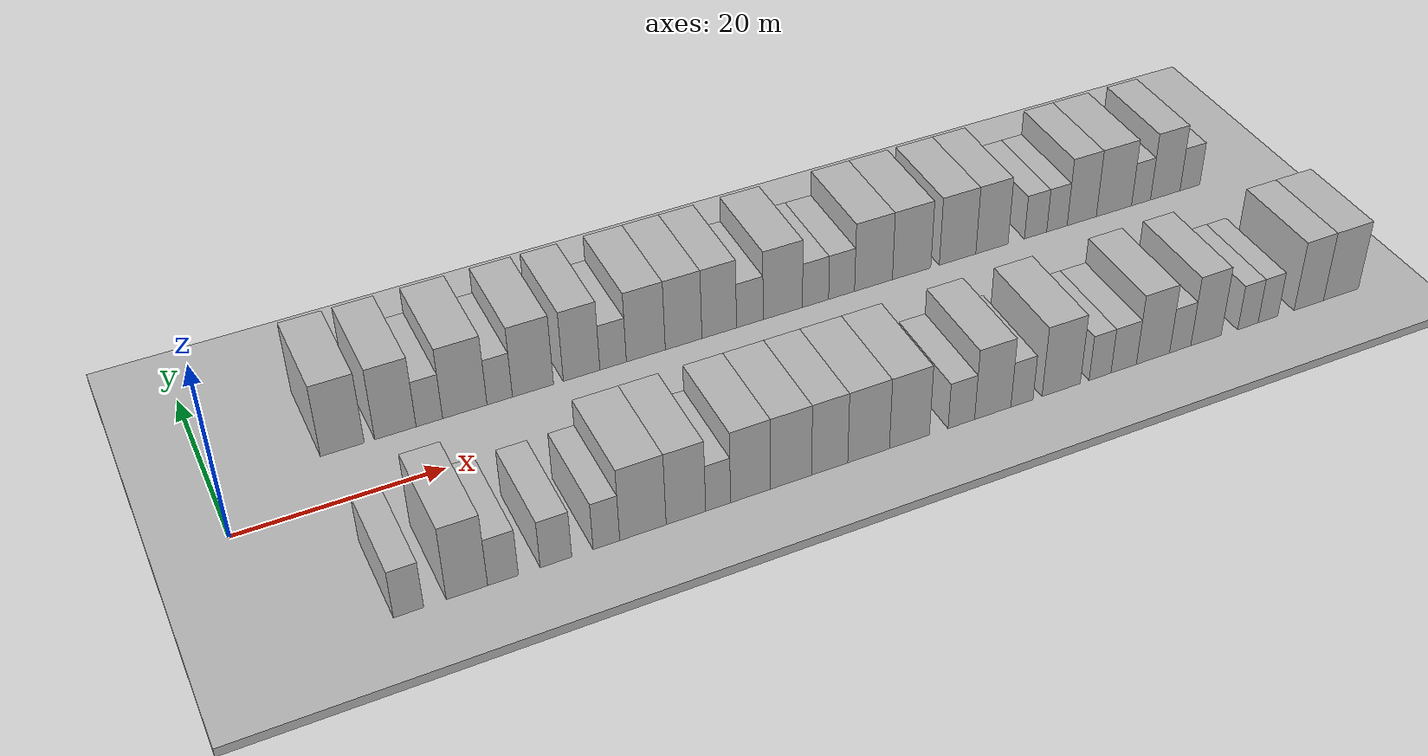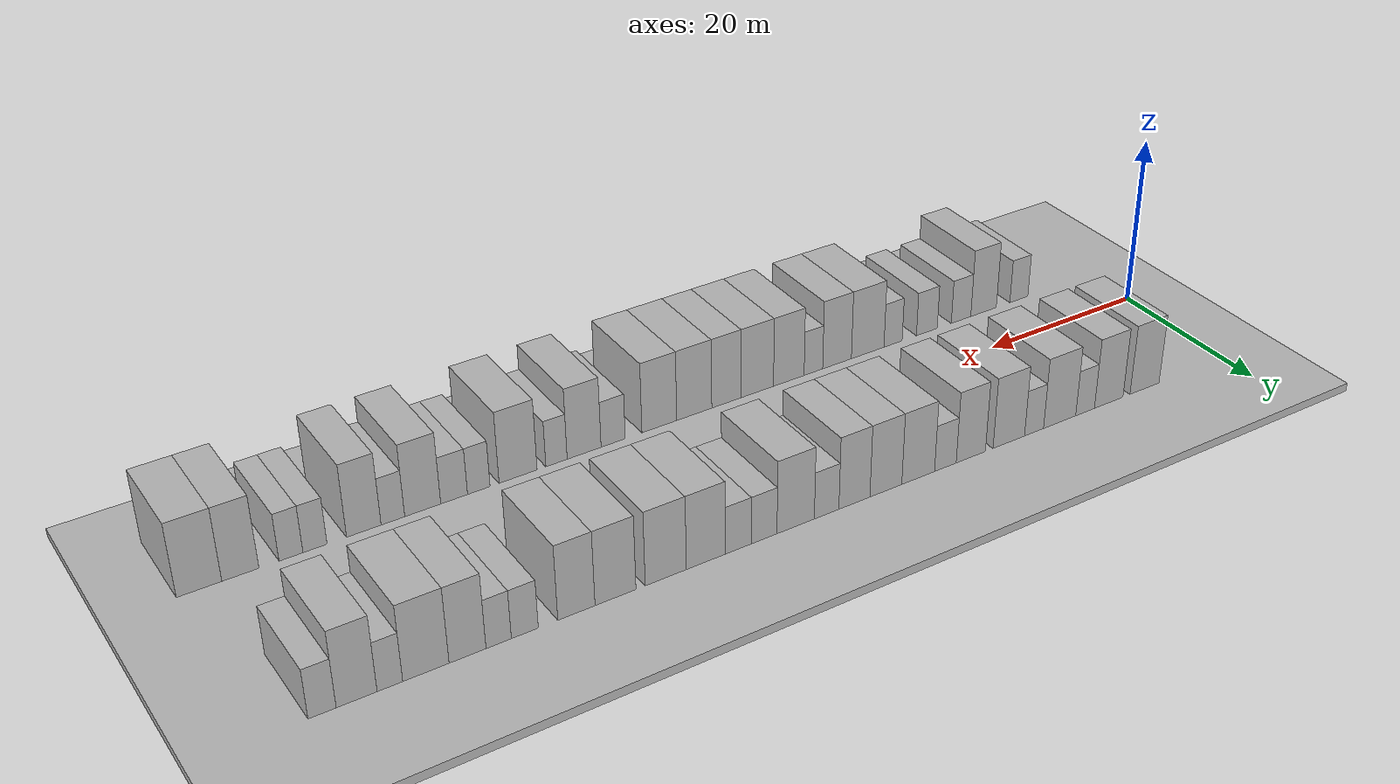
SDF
<sdf version="1.6">
 <world name="default">
  <include><name>ground_plane_1</name><uri>model://HANNAS_ground_plane</uri></include>
  <include>
   <name>ground_plane_2</name>
   <uri>model://HANNAS_ground_plane</uri>
   <pose>100 0 0  0 0 0</pose>
  </include>
  <model name="building_1">
   <static>1</static>
   <pose>12.0894 11.0000 0 0.000000 0.000000 1.570796</pose>
   <link name="link">
    <pose>0 0 4.50 0 0 0</pose>
    <collision name="collision"><geometry><box><size>10.0000 4.1788 9.0000</size></box></geometry></collision>
    <visual name="visual">
     <cast_shadows>0</cast_shadows>
     <geometry><box><size>10.0000 4.1788 9.0000</size></box></geometry>
     <material>
      <script>
       <uri>model://HANNAS_wall/materials/scripts</uri>
       <uri>model://HANNAS_wall/materials/textures</uri>
       <name>vrc/HANNAS_wall</name>
      </script>
     </material>
    </visual>
   </link>
  </model>
  <model name="building_2">
   <static>1</static>
   <pose>17.1828 11.0000 0 0.000000 0.000000 1.570796</pose>
   <link name="link">
    <pose>0 0 4.50 0 0 0</pose>
    <collision name="collision"><geometry><box><size>10.0000 4.0079 9.0000</size></box></geometry></collision>
    <visual name="visual">
     <cast_shadows>0</cast_shadows>
     <geometry><box><size>10.0000 4.0079 9.0000</size></box></geometry>
     <material>
      <script>
       <uri>model://HANNAS_wall/materials/scripts</uri>
       <uri>model://HANNAS_wall/materials/textures</uri>
       <name>vrc/HANNAS_wall</name>
      </script>
     </material>
    </visual>
   </link>
  </model>
  <model name="building_3">
   <static>1</static>
   <pose>20.4852 11.0000 0 0.000000 0.000000 1.570796</pose>
   <link name="link">
    <pose>0 0 3.00 0 0 0</pose>
    <collision name="collision"><geometry><box><size>10.0000 2.5969 6.0000</size></box></geometry></collision>
    <visual name="visual">
     <cast_shadows>0</cast_shadows>
     <geometry><box><size>10.0000 2.5969 6.0000</size></box></geometry>
     <material>
      <script>
       <uri>model://HANNAS_wall/materials/scripts</uri>
       <uri>model://HANNAS_wall/materials/textures</uri>
       <name>vrc/HANNAS_wall</name>
      </script>
     </material>
    </visual>
   </link>
  </model>
  <model name="building_4">
   <static>1</static>
   <pose>23.9830 11.0000 0 0.000000 0.000000 1.570796</pose>
   <link name="link">
    <pose>0 0 4.50 0 0 0</pose>
    <collision name="collision"><geometry><box><size>10.0000 4.3987 9.0000</size></box></geometry></collision>
    <visual name="visual">
     <cast_shadows>0</cast_shadows>
     <geometry><box><size>10.0000 4.3987 9.0000</size></box></geometry>
     <material>
      <script>
       <uri>model://HANNAS_wall/materials/scripts</uri>
       <uri>model://HANNAS_wall/materials/textures</uri>
       <name>vrc/HANNAS_wall</name>
      </script>
     </material>
    </visual>
   </link>
  </model>
  <model name="building_5">
   <static>1</static>
   <pose>27.4589 11.0000 0 0.000000 0.000000 1.570796</pose>
   <link name="link">
    <pose>0 0 3.00 0 0 0</pose>
    <collision name="collision"><geometry><box><size>10.0000 2.5531 6.0000</size></box></geometry></collision>
    <visual name="visual">
     <cast_shadows>0</cast_shadows>
     <geometry><box><size>10.0000 2.5531 6.0000</size></box></geometry>
     <material>
      <script>
       <uri>model://HANNAS_wall/materials/scripts</uri>
       <uri>model://HANNAS_wall/materials/textures</uri>
       <name>vrc/HANNAS_wall</name>
      </script>
     </material>
    </visual>
   </link>
  </model>
  <model name="building_6">
   <static>1</static>
   <pose>30.8205 11.0000 0 0.000000 0.000000 1.570796</pose>
   <link name="link">
    <pose>0 0 4.50 0 0 0</pose>
    <collision name="collision"><geometry><box><size>10.0000 4.1700 9.0000</size></box></geometry></collision>
    <visual name="visual">
     <cast_shadows>0</cast_shadows>
     <geometry><box><size>10.0000 4.1700 9.0000</size></box></geometry>
     <material>
      <script>
       <uri>model://HANNAS_wall/materials/scripts</uri>
       <uri>model://HANNAS_wall/materials/textures</uri>
       <name>vrc/HANNAS_wall</name>
      </script>
     </material>
    </visual>
   </link>
  </model>
  <model name="building_7">
   <static>1</static>
   <pose>35.7964 11.0000 0 0.000000 0.000000 1.570796</pose>
   <link name="link">
    <pose>0 0 4.50 0 0 0</pose>
    <collision name="collision"><geometry><box><size>10.0000 3.7817 9.0000</size></box></geometry></collision>
    <visual name="visual">
     <cast_shadows>0</cast_shadows>
     <geometry><box><size>10.0000 3.7817 9.0000</size></box></geometry>
     <material>
      <script>
       <uri>model://HANNAS_wall/materials/scripts</uri>
       <uri>model://HANNAS_wall/materials/textures</uri>
       <name>vrc/HANNAS_wall</name>
      </script>
     </material>
    </visual>
   </link>
  </model>
  <model name="building_8">
   <static>1</static>
   <pose>39.0722 11.0000 0 0.000000 0.000000 1.570796</pose>
   <link name="link">
    <pose>0 0 3.00 0 0 0</pose>
    <collision name="collision"><geometry><box><size>10.0000 2.7698 6.0000</size></box></geometry></collision>
    <visual name="visual">
     <cast_shadows>0</cast_shadows>
     <geometry><box><size>10.0000 2.7698 6.0000</size></box></geometry>
     <material>
      <script>
       <uri>model://HANNAS_wall/materials/scripts</uri>
       <uri>model://HANNAS_wall/materials/textures</uri>
       <name>vrc/HANNAS_wall</name>
      </script>
     </material>
    </visual>
   </link>
  </model>
  <model name="building_9">
   <static>1</static>
   <pose>42.5148 11.0000 0 0.000000 0.000000 1.570796</pose>
   <link name="link">
    <pose>0 0 4.50 0 0 0</pose>
    <collision name="collision"><geometry><box><size>10.0000 4.1155 9.0000</size></box></geometry></collision>
    <visual name="visual">
     <cast_shadows>0</cast_shadows>
     <geometry><box><size>10.0000 4.1155 9.0000</size></box></geometry>
     <material>
      <script>
       <uri>model://HANNAS_wall/materials/scripts</uri>
       <uri>model://HANNAS_wall/materials/textures</uri>
       <name>vrc/HANNAS_wall</name>
      </script>
     </material>
    </visual>
   </link>
  </model>
  <model name="building_10">
   <static>1</static>
   <pose>46.5378 11.0000 0 0.000000 0.000000 1.570796</pose>
   <link name="link">
    <pose>0 0 4.50 0 0 0</pose>
    <collision name="collision"><geometry><box><size>10.0000 3.9304 9.0000</size></box></geometry></collision>
    <visual name="visual">
     <cast_shadows>0</cast_shadows>
     <geometry><box><size>10.0000 3.9304 9.0000</size></box></geometry>
     <material>
      <script>
       <uri>model://HANNAS_wall/materials/scripts</uri>
       <uri>model://HANNAS_wall/materials/textures</uri>
       <name>vrc/HANNAS_wall</name>
      </script>
     </material>
    </visual>
   </link>
  </model>
  <model name="building_11">
   <static>1</static>
   <pose>50.3822 11.0000 0 0.000000 0.000000 1.570796</pose>
   <link name="link">
    <pose>0 0 4.50 0 0 0</pose>
    <collision name="collision"><geometry><box><size>10.0000 3.7583 9.0000</size></box></geometry></collision>
    <visual name="visual">
     <cast_shadows>0</cast_shadows>
     <geometry><box><size>10.0000 3.7583 9.0000</size></box></geometry>
     <material>
      <script>
       <uri>model://HANNAS_wall/materials/scripts</uri>
       <uri>model://HANNAS_wall/materials/textures</uri>
       <name>vrc/HANNAS_wall</name>
      </script>
     </material>
    </visual>
   </link>
  </model>
  <model name="building_12">
   <static>1</static>
   <pose>53.7239 11.0000 0 0.000000 0.000000 1.570796</pose>
   <link name="link">
    <pose>0 0 3.00 0 0 0</pose>
    <collision name="collision"><geometry><box><size>10.0000 2.9252 6.0000</size></box></geometry></collision>
    <visual name="visual">
     <cast_shadows>0</cast_shadows>
     <geometry><box><size>10.0000 2.9252 6.0000</size></box></geometry>
     <material>
      <script>
       <uri>model://HANNAS_wall/materials/scripts</uri>
       <uri>model://HANNAS_wall/materials/textures</uri>
       <name>vrc/HANNAS_wall</name>
      </script>
     </material>
    </visual>
   </link>
  </model>
  <model name="building_13">
   <static>1</static>
   <pose>57.3738 11.0000 0 0.000000 0.000000 1.570796</pose>
   <link name="link">
    <pose>0 0 4.50 0 0 0</pose>
    <collision name="collision"><geometry><box><size>10.0000 4.3746 9.0000</size></box></geometry></collision>
    <visual name="visual">
     <cast_shadows>0</cast_shadows>
     <geometry><box><size>10.0000 4.3746 9.0000</size></box></geometry>
     <material>
      <script>
       <uri>model://HANNAS_wall/materials/scripts</uri>
       <uri>model://HANNAS_wall/materials/textures</uri>
       <name>vrc/HANNAS_wall</name>
      </script>
     </material>
    </visual>
   </link>
  </model>
  <model name="building_14">
   <static>1</static>
   <pose>61.0347 11.0000 0 0.000000 0.000000 1.570796</pose>
   <link name="link">
    <pose>0 0 3.00 0 0 0</pose>
    <collision name="collision"><geometry><box><size>10.0000 2.9471 6.0000</size></box></geometry></collision>
    <visual name="visual">
     <cast_shadows>0</cast_shadows>
     <geometry><box><size>10.0000 2.9471 6.0000</size></box></geometry>
     <material>
      <script>
       <uri>model://HANNAS_wall/materials/scripts</uri>
       <uri>model://HANNAS_wall/materials/textures</uri>
       <name>vrc/HANNAS_wall</name>
      </script>
     </material>
    </visual>
   </link>
  </model>
  <model name="building_15">
   <static>1</static>
   <pose>63.9837 11.0000 0 0.000000 0.000000 1.570796</pose>
   <link name="link">
    <pose>0 0 3.00 0 0 0</pose>
    <collision name="collision"><geometry><box><size>10.0000 2.9508 6.0000</size></box></geometry></collision>
    <visual name="visual">
     <cast_shadows>0</cast_shadows>
     <geometry><box><size>10.0000 2.9508 6.0000</size></box></geometry>
     <material>
      <script>
       <uri>model://HANNAS_wall/materials/scripts</uri>
       <uri>model://HANNAS_wall/materials/textures</uri>
       <name>vrc/HANNAS_wall</name>
      </script>
     </material>
    </visual>
   </link>
  </model>
  <model name="building_16">
   <static>1</static>
   <pose>67.6366 11.0000 0 0.000000 0.000000 1.570796</pose>
   <link name="link">
    <pose>0 0 4.50 0 0 0</pose>
    <collision name="collision"><geometry><box><size>10.0000 4.3550 9.0000</size></box></geometry></collision>
    <visual name="visual">
     <cast_shadows>0</cast_shadows>
     <geometry><box><size>10.0000 4.3550 9.0000</size></box></geometry>
     <material>
      <script>
       <uri>model://HANNAS_wall/materials/scripts</uri>
       <uri>model://HANNAS_wall/materials/textures</uri>
       <name>vrc/HANNAS_wall</name>
      </script>
     </material>
    </visual>
   </link>
  </model>
  <model name="building_17">
   <static>1</static>
   <pose>72.0608 11.0000 0 0.000000 0.000000 1.570796</pose>
   <link name="link">
    <pose>0 0 4.50 0 0 0</pose>
    <collision name="collision"><geometry><box><size>10.0000 4.4936 9.0000</size></box></geometry></collision>
    <visual name="visual">
     <cast_shadows>0</cast_shadows>
     <geometry><box><size>10.0000 4.4936 9.0000</size></box></geometry>
     <material>
      <script>
       <uri>model://HANNAS_wall/materials/scripts</uri>
       <uri>model://HANNAS_wall/materials/textures</uri>
       <name>vrc/HANNAS_wall</name>
      </script>
     </material>
    </visual>
   </link>
  </model>
  <model name="building_18">
   <static>1</static>
   <pose>77.4810 11.0000 0 0.000000 0.000000 1.570796</pose>
   <link name="link">
    <pose>0 0 4.50 0 0 0</pose>
    <collision name="collision"><geometry><box><size>10.0000 4.3468 9.0000</size></box></geometry></collision>
    <visual name="visual">
     <cast_shadows>0</cast_shadows>
     <geometry><box><size>10.0000 4.3468 9.0000</size></box></geometry>
     <material>
      <script>
       <uri>model://HANNAS_wall/materials/scripts</uri>
       <uri>model://HANNAS_wall/materials/textures</uri>
       <name>vrc/HANNAS_wall</name>
      </script>
     </material>
    </visual>
   </link>
  </model>
  <model name="building_19">
   <static>1</static>
   <pose>81.5940 11.0000 0 0.000000 0.000000 1.570796</pose>
   <link name="link">
    <pose>0 0 4.50 0 0 0</pose>
    <collision name="collision"><geometry><box><size>10.0000 3.8792 9.0000</size></box></geometry></collision>
    <visual name="visual">
     <cast_shadows>0</cast_shadows>
     <geometry><box><size>10.0000 3.8792 9.0000</size></box></geometry>
     <material>
      <script>
       <uri>model://HANNAS_wall/materials/scripts</uri>
       <uri>model://HANNAS_wall/materials/textures</uri>
       <name>vrc/HANNAS_wall</name>
      </script>
     </material>
    </visual>
   </link>
  </model>
  <model name="building_20">
   <static>1</static>
   <pose>86.8981 11.0000 0 0.000000 0.000000 1.570796</pose>
   <link name="link">
    <pose>0 0 3.00 0 0 0</pose>
    <collision name="collision"><geometry><box><size>10.0000 2.7290 6.0000</size></box></geometry></collision>
    <visual name="visual">
     <cast_shadows>0</cast_shadows>
     <geometry><box><size>10.0000 2.7290 6.0000</size></box></geometry>
     <material>
      <script>
       <uri>model://HANNAS_wall/materials/scripts</uri>
       <uri>model://HANNAS_wall/materials/textures</uri>
       <name>vrc/HANNAS_wall</name>
      </script>
     </material>
    </visual>
   </link>
  </model>
  <model name="building_21">
   <static>1</static>
   <pose>89.5289 11.0000 0 0.000000 0.000000 1.570796</pose>
   <link name="link">
    <pose>0 0 3.00 0 0 0</pose>
    <collision name="collision"><geometry><box><size>10.0000 2.5326 6.0000</size></box></geometry></collision>
    <visual name="visual">
     <cast_shadows>0</cast_shadows>
     <geometry><box><size>10.0000 2.5326 6.0000</size></box></geometry>
     <material>
      <script>
       <uri>model://HANNAS_wall/materials/scripts</uri>
       <uri>model://HANNAS_wall/materials/textures</uri>
       <name>vrc/HANNAS_wall</name>
      </script>
     </material>
    </visual>
   </link>
  </model>
  <model name="building_22">
   <static>1</static>
   <pose>92.6127 11.0000 0 0.000000 0.000000 1.570796</pose>
   <link name="link">
    <pose>0 0 4.50 0 0 0</pose>
    <collision name="collision"><geometry><box><size>10.0000 3.6350 9.0000</size></box></geometry></collision>
    <visual name="visual">
     <cast_shadows>0</cast_shadows>
     <geometry><box><size>10.0000 3.6350 9.0000</size></box></geometry>
     <material>
      <script>
       <uri>model://HANNAS_wall/materials/scripts</uri>
       <uri>model://HANNAS_wall/materials/textures</uri>
       <name>vrc/HANNAS_wall</name>
      </script>
     </material>
    </visual>
   </link>
  </model>
  <model name="building_23">
   <static>1</static>
   <pose>96.6629 11.0000 0 0.000000 0.000000 1.570796</pose>
   <link name="link">
    <pose>0 0 4.50 0 0 0</pose>
    <collision name="collision"><geometry><box><size>10.0000 4.4656 9.0000</size></box></geometry></collision>
    <visual name="visual">
     <cast_shadows>0</cast_shadows>
     <geometry><box><size>10.0000 4.4656 9.0000</size></box></geometry>
     <material>
      <script>
       <uri>model://HANNAS_wall/materials/scripts</uri>
       <uri>model://HANNAS_wall/materials/textures</uri>
       <name>vrc/HANNAS_wall</name>
      </script>
     </material>
    </visual>
   </link>
  </model>
  <model name="building_24">
   <static>1</static>
   <pose>100.1075 11.0000 0 0.000000 0.000000 1.570796</pose>
   <link name="link">
    <pose>0 0 3.00 0 0 0</pose>
    <collision name="collision"><geometry><box><size>10.0000 2.4235 6.0000</size></box></geometry></collision>
    <visual name="visual">
     <cast_shadows>0</cast_shadows>
     <geometry><box><size>10.0000 2.4235 6.0000</size></box></geometry>
     <material>
      <script>
       <uri>model://HANNAS_wall/materials/scripts</uri>
       <uri>model://HANNAS_wall/materials/textures</uri>
       <name>vrc/HANNAS_wall</name>
      </script>
     </material>
    </visual>
   </link>
  </model>
  <model name="building_25">
   <static>1</static>
   <pose>103.2230 11.0000 0 0.000000 0.000000 1.570796</pose>
   <link name="link">
    <pose>0 0 4.50 0 0 0</pose>
    <collision name="collision"><geometry><box><size>10.0000 3.8074 9.0000</size></box></geometry></collision>
    <visual name="visual">
     <cast_shadows>0</cast_shadows>
     <geometry><box><size>10.0000 3.8074 9.0000</size></box></geometry>
     <material>
      <script>
       <uri>model://HANNAS_wall/materials/scripts</uri>
       <uri>model://HANNAS_wall/materials/textures</uri>
       <name>vrc/HANNAS_wall</name>
      </script>
     </material>
    </visual>
   </link>
  </model>
  <model name="building_26">
   <static>1</static>
   <pose>106.4189 11.0000 0 0.000000 0.000000 1.570796</pose>
   <link name="link">
    <pose>0 0 3.00 0 0 0</pose>
    <collision name="collision"><geometry><box><size>10.0000 2.5844 6.0000</size></box></geometry></collision>
    <visual name="visual">
     <cast_shadows>0</cast_shadows>
     <geometry><box><size>10.0000 2.5844 6.0000</size></box></geometry>
     <material>
      <script>
       <uri>model://HANNAS_wall/materials/scripts</uri>
       <uri>model://HANNAS_wall/materials/textures</uri>
       <name>vrc/HANNAS_wall</name>
      </script>
     </material>
    </visual>
   </link>
  </model>
  <model name="building_53">
   <static>1</static>
   <pose>11.3415 -11.0000 0 0.000000 0.000000 1.570796</pose>
   <link name="link">
    <pose>0 0 3.00 0 0 0</pose>
    <collision name="collision"><geometry><box><size>10.0000 2.6829 6.0000</size></box></geometry></collision>
    <visual name="visual">
     <cast_shadows>0</cast_shadows>
     <geometry><box><size>10.0000 2.6829 6.0000</size></box></geometry>
     <material>
      <script>
       <uri>model://HANNAS_wall/materials/scripts</uri>
       <uri>model://HANNAS_wall/materials/textures</uri>
       <name>vrc/HANNAS_wall</name>
      </script>
     </material>
    </visual>
   </link>
  </model>
  <model name="building_54">
   <static>1</static>
   <pose>16.5427 -11.0000 0 0.000000 0.000000 1.570796</pose>
   <link name="link">
    <pose>0 0 4.50 0 0 0</pose>
    <collision name="collision"><geometry><box><size>10.0000 3.7194 9.0000</size></box></geometry></collision>
    <visual name="visual">
     <cast_shadows>0</cast_shadows>
     <geometry><box><size>10.0000 3.7194 9.0000</size></box></geometry>
     <material>
      <script>
       <uri>model://HANNAS_wall/materials/scripts</uri>
       <uri>model://HANNAS_wall/materials/textures</uri>
       <name>vrc/HANNAS_wall</name>
      </script>
     </material>
    </visual>
   </link>
  </model>
  <model name="building_55">
   <static>1</static>
   <pose>19.8038 -11.0000 0 0.000000 0.000000 1.570796</pose>
   <link name="link">
    <pose>0 0 3.00 0 0 0</pose>
    <collision name="collision"><geometry><box><size>10.0000 2.8029 6.0000</size></box></geometry></collision>
    <visual name="visual">
     <cast_shadows>0</cast_shadows>
     <geometry><box><size>10.0000 2.8029 6.0000</size></box></geometry>
     <material>
      <script>
       <uri>model://HANNAS_wall/materials/scripts</uri>
       <uri>model://HANNAS_wall/materials/textures</uri>
       <name>vrc/HANNAS_wall</name>
      </script>
     </material>
    </visual>
   </link>
  </model>
  <model name="building_56">
   <static>1</static>
   <pose>24.6701 -11.0000 0 0.000000 0.000000 1.570796</pose>
   <link name="link">
    <pose>0 0 3.00 0 0 0</pose>
    <collision name="collision"><geometry><box><size>10.0000 2.9298 6.0000</size></box></geometry></collision>
    <visual name="visual">
     <cast_shadows>0</cast_shadows>
     <geometry><box><size>10.0000 2.9298 6.0000</size></box></geometry>
     <material>
      <script>
       <uri>model://HANNAS_wall/materials/scripts</uri>
       <uri>model://HANNAS_wall/materials/textures</uri>
       <name>vrc/HANNAS_wall</name>
      </script>
     </material>
    </visual>
   </link>
  </model>
  <model name="building_57">
   <static>1</static>
   <pose>29.3902 -11.0000 0 0.000000 0.000000 1.570796</pose>
   <link name="link">
    <pose>0 0 3.00 0 0 0</pose>
    <collision name="collision"><geometry><box><size>10.0000 2.5104 6.0000</size></box></geometry></collision>
    <visual name="visual">
     <cast_shadows>0</cast_shadows>
     <geometry><box><size>10.0000 2.5104 6.0000</size></box></geometry>
     <material>
      <script>
       <uri>model://HANNAS_wall/materials/scripts</uri>
       <uri>model://HANNAS_wall/materials/textures</uri>
       <name>vrc/HANNAS_wall</name>
      </script>
     </material>
    </visual>
   </link>
  </model>
  <model name="building_58">
   <static>1</static>
   <pose>32.8690 -11.0000 0 0.000000 0.000000 1.570796</pose>
   <link name="link">
    <pose>0 0 4.50 0 0 0</pose>
    <collision name="collision"><geometry><box><size>10.0000 4.4471 9.0000</size></box></geometry></collision>
    <visual name="visual">
     <cast_shadows>0</cast_shadows>
     <geometry><box><size>10.0000 4.4471 9.0000</size></box></geometry>
     <material>
      <script>
       <uri>model://HANNAS_wall/materials/scripts</uri>
       <uri>model://HANNAS_wall/materials/textures</uri>
       <name>vrc/HANNAS_wall</name>
      </script>
     </material>
    </visual>
   </link>
  </model>
  <model name="building_59">
   <static>1</static>
   <pose>37.0148 -11.0000 0 0.000000 0.000000 1.570796</pose>
   <link name="link">
    <pose>0 0 4.50 0 0 0</pose>
    <collision name="collision"><geometry><box><size>10.0000 3.8444 9.0000</size></box></geometry></collision>
    <visual name="visual">
     <cast_shadows>0</cast_shadows>
     <geometry><box><size>10.0000 3.8444 9.0000</size></box></geometry>
     <material>
      <script>
       <uri>model://HANNAS_wall/materials/scripts</uri>
       <uri>model://HANNAS_wall/materials/textures</uri>
       <name>vrc/HANNAS_wall</name>
      </script>
     </material>
    </visual>
   </link>
  </model>
  <model name="building_60">
   <static>1</static>
   <pose>40.1631 -11.0000 0 0.000000 0.000000 1.570796</pose>
   <link name="link">
    <pose>0 0 3.00 0 0 0</pose>
    <collision name="collision"><geometry><box><size>10.0000 2.4523 6.0000</size></box></geometry></collision>
    <visual name="visual">
     <cast_shadows>0</cast_shadows>
     <geometry><box><size>10.0000 2.4523 6.0000</size></box></geometry>
     <material>
      <script>
       <uri>model://HANNAS_wall/materials/scripts</uri>
       <uri>model://HANNAS_wall/materials/textures</uri>
       <name>vrc/HANNAS_wall</name>
      </script>
     </material>
    </visual>
   </link>
  </model>
  <model name="building_61">
   <static>1</static>
   <pose>43.3816 -11.0000 0 0.000000 0.000000 1.570796</pose>
   <link name="link">
    <pose>0 0 4.50 0 0 0</pose>
    <collision name="collision"><geometry><box><size>10.0000 3.9846 9.0000</size></box></geometry></collision>
    <visual name="visual">
     <cast_shadows>0</cast_shadows>
     <geometry><box><size>10.0000 3.9846 9.0000</size></box></geometry>
     <material>
      <script>
       <uri>model://HANNAS_wall/materials/scripts</uri>
       <uri>model://HANNAS_wall/materials/textures</uri>
       <name>vrc/HANNAS_wall</name>
      </script>
     </material>
    </visual>
   </link>
  </model>
  <model name="building_62">
   <static>1</static>
   <pose>47.4419 -11.0000 0 0.000000 0.000000 1.570796</pose>
   <link name="link">
    <pose>0 0 4.50 0 0 0</pose>
    <collision name="collision"><geometry><box><size>10.0000 4.1360 9.0000</size></box></geometry></collision>
    <visual name="visual">
     <cast_shadows>0</cast_shadows>
     <geometry><box><size>10.0000 4.1360 9.0000</size></box></geometry>
     <material>
      <script>
       <uri>model://HANNAS_wall/materials/scripts</uri>
       <uri>model://HANNAS_wall/materials/textures</uri>
       <name>vrc/HANNAS_wall</name>
      </script>
     </material>
    </visual>
   </link>
  </model>
  <model name="building_63">
   <static>1</static>
   <pose>51.3653 -11.0000 0 0.000000 0.000000 1.570796</pose>
   <link name="link">
    <pose>0 0 4.50 0 0 0</pose>
    <collision name="collision"><geometry><box><size>10.0000 3.7106 9.0000</size></box></geometry></collision>
    <visual name="visual">
     <cast_shadows>0</cast_shadows>
     <geometry><box><size>10.0000 3.7106 9.0000</size></box></geometry>
     <material>
      <script>
       <uri>model://HANNAS_wall/materials/scripts</uri>
       <uri>model://HANNAS_wall/materials/textures</uri>
       <name>vrc/HANNAS_wall</name>
      </script>
     </material>
    </visual>
   </link>
  </model>
  <model name="building_64">
   <static>1</static>
   <pose>55.3886 -11.0000 0 0.000000 0.000000 1.570796</pose>
   <link name="link">
    <pose>0 0 4.50 0 0 0</pose>
    <collision name="collision"><geometry><box><size>10.0000 4.3359 9.0000</size></box></geometry></collision>
    <visual name="visual">
     <cast_shadows>0</cast_shadows>
     <geometry><box><size>10.0000 4.3359 9.0000</size></box></geometry>
     <material>
      <script>
       <uri>model://HANNAS_wall/materials/scripts</uri>
       <uri>model://HANNAS_wall/materials/textures</uri>
       <name>vrc/HANNAS_wall</name>
      </script>
     </material>
    </visual>
   </link>
  </model>
  <model name="building_65">
   <static>1</static>
   <pose>59.6733 -11.0000 0 0.000000 0.000000 1.570796</pose>
   <link name="link">
    <pose>0 0 4.50 0 0 0</pose>
    <collision name="collision"><geometry><box><size>10.0000 4.2336 9.0000</size></box></geometry></collision>
    <visual name="visual">
     <cast_shadows>0</cast_shadows>
     <geometry><box><size>10.0000 4.2336 9.0000</size></box></geometry>
     <material>
      <script>
       <uri>model://HANNAS_wall/materials/scripts</uri>
       <uri>model://HANNAS_wall/materials/textures</uri>
       <name>vrc/HANNAS_wall</name>
      </script>
     </material>
    </visual>
   </link>
  </model>
  <model name="building_66">
   <static>1</static>
   <pose>65.2210 -11.0000 0 0.000000 0.000000 1.570796</pose>
   <link name="link">
    <pose>0 0 3.00 0 0 0</pose>
    <collision name="collision"><geometry><box><size>10.0000 2.8617 6.0000</size></box></geometry></collision>
    <visual name="visual">
     <cast_shadows>0</cast_shadows>
     <geometry><box><size>10.0000 2.8617 6.0000</size></box></geometry>
     <material>
      <script>
       <uri>model://HANNAS_wall/materials/scripts</uri>
       <uri>model://HANNAS_wall/materials/textures</uri>
       <name>vrc/HANNAS_wall</name>
      </script>
     </material>
    </visual>
   </link>
  </model>
  <model name="building_67">
   <static>1</static>
   <pose>68.6306 -11.0000 0 0.000000 0.000000 1.570796</pose>
   <link name="link">
    <pose>0 0 4.50 0 0 0</pose>
    <collision name="collision"><geometry><box><size>10.0000 3.9574 9.0000</size></box></geometry></collision>
    <visual name="visual">
     <cast_shadows>0</cast_shadows>
     <geometry><box><size>10.0000 3.9574 9.0000</size></box></geometry>
     <material>
      <script>
       <uri>model://HANNAS_wall/materials/scripts</uri>
       <uri>model://HANNAS_wall/materials/textures</uri>
       <name>vrc/HANNAS_wall</name>
      </script>
     </material>
    </visual>
   </link>
  </model>
  <model name="building_68">
   <static>1</static>
   <pose>71.8348 -11.0000 0 0.000000 0.000000 1.570796</pose>
   <link name="link">
    <pose>0 0 3.00 0 0 0</pose>
    <collision name="collision"><geometry><box><size>10.0000 2.4510 6.0000</size></box></geometry></collision>
    <visual name="visual">
     <cast_shadows>0</cast_shadows>
     <geometry><box><size>10.0000 2.4510 6.0000</size></box></geometry>
     <material>
      <script>
       <uri>model://HANNAS_wall/materials/scripts</uri>
       <uri>model://HANNAS_wall/materials/textures</uri>
       <name>vrc/HANNAS_wall</name>
      </script>
     </material>
    </visual>
   </link>
  </model>
  <model name="building_69">
   <static>1</static>
   <pose>76.2057 -11.0000 0 0.000000 0.000000 1.570796</pose>
   <link name="link">
    <pose>0 0 4.50 0 0 0</pose>
    <collision name="collision"><geometry><box><size>10.0000 4.2909 9.0000</size></box></geometry></collision>
    <visual name="visual">
     <cast_shadows>0</cast_shadows>
     <geometry><box><size>10.0000 4.2909 9.0000</size></box></geometry>
     <material>
      <script>
       <uri>model://HANNAS_wall/materials/scripts</uri>
       <uri>model://HANNAS_wall/materials/textures</uri>
       <name>vrc/HANNAS_wall</name>
      </script>
     </material>
    </visual>
   </link>
  </model>
  <model name="building_70">
   <static>1</static>
   <pose>80.5967 -11.0000 0 0.000000 0.000000 1.570796</pose>
   <link name="link">
    <pose>0 0 3.00 0 0 0</pose>
    <collision name="collision"><geometry><box><size>10.0000 2.4910 6.0000</size></box></geometry></collision>
    <visual name="visual">
     <cast_shadows>0</cast_shadows>
     <geometry><box><size>10.0000 2.4910 6.0000</size></box></geometry>
     <material>
      <script>
       <uri>model://HANNAS_wall/materials/scripts</uri>
       <uri>model://HANNAS_wall/materials/textures</uri>
       <name>vrc/HANNAS_wall</name>
      </script>
     </material>
    </visual>
   </link>
  </model>
  <model name="building_71">
   <static>1</static>
   <pose>83.3028 -11.0000 0 0.000000 0.000000 1.570796</pose>
   <link name="link">
    <pose>0 0 3.00 0 0 0</pose>
    <collision name="collision"><geometry><box><size>10.0000 2.9211 6.0000</size></box></geometry></collision>
    <visual name="visual">
     <cast_shadows>0</cast_shadows>
     <geometry><box><size>10.0000 2.9211 6.0000</size></box></geometry>
     <material>
      <script>
       <uri>model://HANNAS_wall/materials/scripts</uri>
       <uri>model://HANNAS_wall/materials/textures</uri>
       <name>vrc/HANNAS_wall</name>
      </script>
     </material>
    </visual>
   </link>
  </model>
  <model name="building_72">
   <static>1</static>
   <pose>86.6988 -11.0000 0 0.000000 0.000000 1.570796</pose>
   <link name="link">
    <pose>0 0 4.50 0 0 0</pose>
    <collision name="collision"><geometry><box><size>10.0000 3.8709 9.0000</size></box></geometry></collision>
    <visual name="visual">
     <cast_shadows>0</cast_shadows>
     <geometry><box><size>10.0000 3.8709 9.0000</size></box></geometry>
     <material>
      <script>
       <uri>model://HANNAS_wall/materials/scripts</uri>
       <uri>model://HANNAS_wall/materials/textures</uri>
       <name>vrc/HANNAS_wall</name>
      </script>
     </material>
    </visual>
   </link>
  </model>
  <model name="building_73">
   <static>1</static>
   <pose>89.8842 -11.0000 0 0.000000 0.000000 1.570796</pose>
   <link name="link">
    <pose>0 0 3.00 0 0 0</pose>
    <collision name="collision"><geometry><box><size>10.0000 2.5000 6.0000</size></box></geometry></collision>
    <visual name="visual">
     <cast_shadows>0</cast_shadows>
     <geometry><box><size>10.0000 2.5000 6.0000</size></box></geometry>
     <material>
      <script>
       <uri>model://HANNAS_wall/materials/scripts</uri>
       <uri>model://HANNAS_wall/materials/textures</uri>
       <name>vrc/HANNAS_wall</name>
      </script>
     </material>
    </visual>
   </link>
  </model>
  <model name="building_74">
   <static>1</static>
   <pose>92.9354 -11.0000 0 0.000000 0.000000 1.570796</pose>
   <link name="link">
    <pose>0 0 4.50 0 0 0</pose>
    <collision name="collision"><geometry><box><size>10.0000 3.6025 9.0000</size></box></geometry></collision>
    <visual name="visual">
     <cast_shadows>0</cast_shadows>
     <geometry><box><size>10.0000 3.6025 9.0000</size></box></geometry>
     <material>
      <script>
       <uri>model://HANNAS_wall/materials/scripts</uri>
       <uri>model://HANNAS_wall/materials/textures</uri>
       <name>vrc/HANNAS_wall</name>
      </script>
     </material>
    </visual>
   </link>
  </model>
  <model name="building_75">
   <static>1</static>
   <pose>97.9647 -11.0000 0 0.000000 0.000000 1.570796</pose>
   <link name="link">
    <pose>0 0 3.00 0 0 0</pose>
    <collision name="collision"><geometry><box><size>10.0000 2.4561 6.0000</size></box></geometry></collision>
    <visual name="visual">
     <cast_shadows>0</cast_shadows>
     <geometry><box><size>10.0000 2.4561 6.0000</size></box></geometry>
     <material>
      <script>
       <uri>model://HANNAS_wall/materials/scripts</uri>
       <uri>model://HANNAS_wall/materials/textures</uri>
       <name>vrc/HANNAS_wall</name>
      </script>
     </material>
    </visual>
   </link>
  </model>
  <model name="building_76">
   <static>1</static>
   <pose>100.3985 -11.0000 0 0.000000 0.000000 1.570796</pose>
   <link name="link">
    <pose>0 0 3.00 0 0 0</pose>
    <collision name="collision"><geometry><box><size>10.0000 2.4115 6.0000</size></box></geometry></collision>
    <visual name="visual">
     <cast_shadows>0</cast_shadows>
     <geometry><box><size>10.0000 2.4115 6.0000</size></box></geometry>
     <material>
      <script>
       <uri>model://HANNAS_wall/materials/scripts</uri>
       <uri>model://HANNAS_wall/materials/textures</uri>
       <name>vrc/HANNAS_wall</name>
      </script>
     </material>
    </visual>
   </link>
  </model>
  <model name="building_77">
   <static>1</static>
   <pose>105.4260 -11.0000 0 0.000000 0.000000 1.570796</pose>
   <link name="link">
    <pose>0 0 4.50 0 0 0</pose>
    <collision name="collision"><geometry><box><size>10.0000 3.6436 9.0000</size></box></geometry></collision>
    <visual name="visual">
     <cast_shadows>0</cast_shadows>
     <geometry><box><size>10.0000 3.6436 9.0000</size></box></geometry>
     <material>
      <script>
       <uri>model://HANNAS_wall/materials/scripts</uri>
       <uri>model://HANNAS_wall/materials/textures</uri>
       <name>vrc/HANNAS_wall</name>
      </script>
     </material>
    </visual>
   </link>
  </model>
  <model name="building_78">
   <static>1</static>
   <pose>109.4429 -11.0000 0 0.000000 0.000000 1.570796</pose>
   <link name="link">
    <pose>0 0 4.50 0 0 0</pose>
    <collision name="collision"><geometry><box><size>10.0000 4.3902 9.0000</size></box></geometry></collision>
    <visual name="visual">
     <cast_shadows>0</cast_shadows>
     <geometry><box><size>10.0000 4.3902 9.0000</size></box></geometry>
     <material>
      <script>
       <uri>model://HANNAS_wall/materials/scripts</uri>
       <uri>model://HANNAS_wall/materials/textures</uri>
       <name>vrc/HANNAS_wall</name>
      </script>
     </material>
    </visual>
   </link>
  </model>
 </world>
</sdf>
